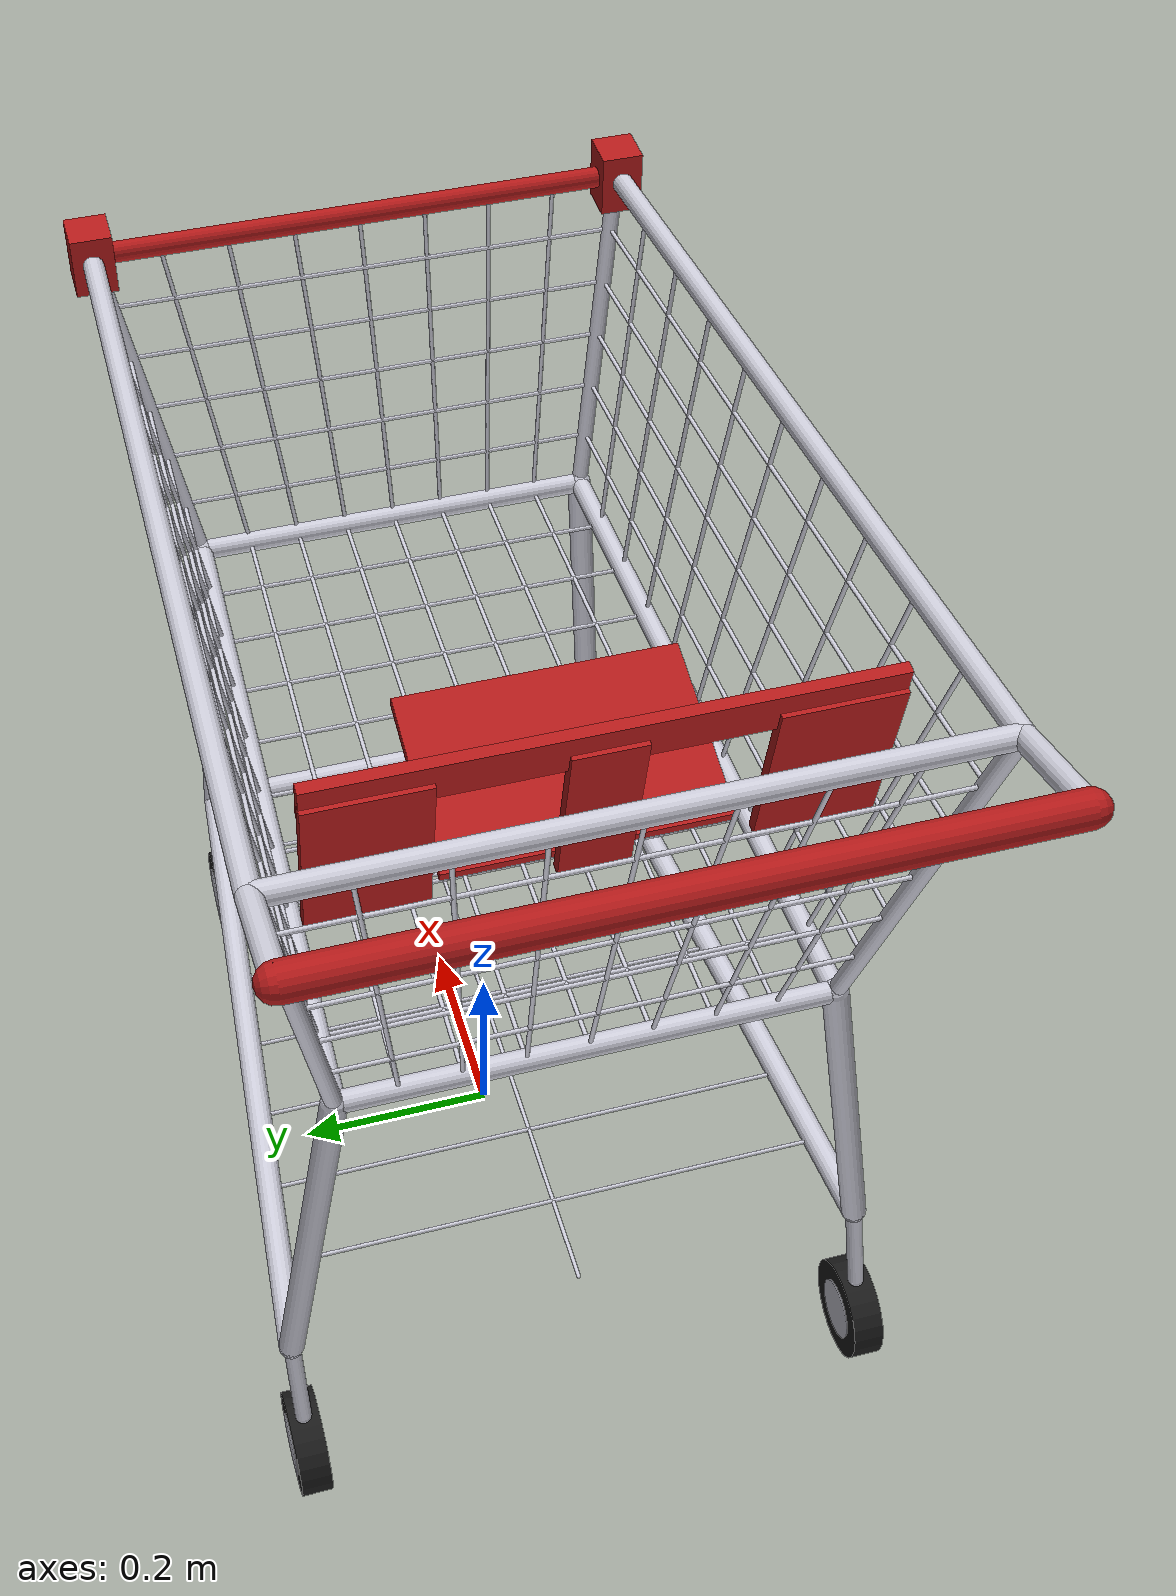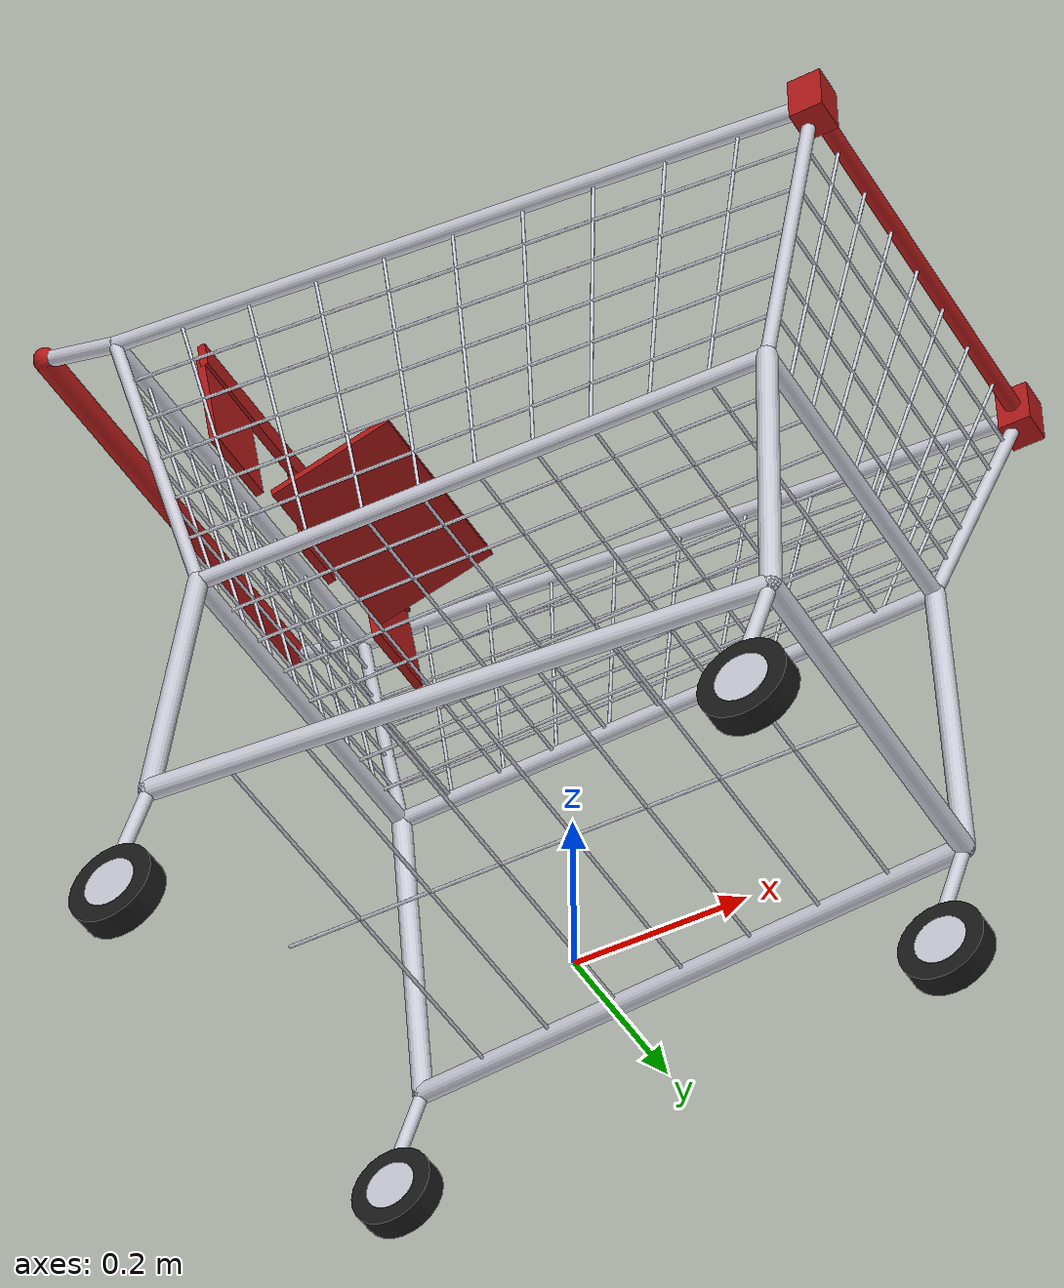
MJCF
<mujoco model="shopping_cart">
  <compiler angle="degree"/>
  <option gravity="0 0 -9.81"/>

  <asset>
    <material name="chrome" rgba="0.8 0.8 0.85 1" shininess="1.0" specular="1.0" reflectance="0.7"/>
    <material name="red_plastic" rgba="0.7 0.1 0.1 1" shininess="0.3" specular="0.5"/>
    <material name="black_rubber" rgba="0.1 0.1 0.1 1" shininess="0.1" specular="0.1"/>
  </asset>

  <worldbody>
    <body name="shopping_cart" pos="0 0 0">
      <joint name="free_joint" type="free"/>

      <!-- === BASE FRAME === -->
      <!-- Bottom Frame U-shape or Trapezoid -->
      <!-- Height of base tubes: 0.18m -->

      <!-- Left Tube -->
      <geom name="base_left" type="capsule" fromto="-0.35 0.28 0.18  0.35 0.22 0.18" size="0.012" material="chrome"/>
      <!-- Right Tube -->
      <geom name="base_right" type="capsule" fromto="-0.35 -0.28 0.18  0.35 -0.22 0.18" size="0.012" material="chrome"/>
      <!-- Front Crossbar -->
      <geom name="base_front" type="capsule" fromto="0.35 0.22 0.18  0.35 -0.22 0.18" size="0.012" material="chrome"/>

      <!-- Base Rack (Bottom Grid) -->
      <geom name="rack_trans_1" type="capsule" fromto="-0.262 0.273 0.18 -0.262 -0.273 0.18" size="0.002" material="chrome"/>
      <geom name="rack_trans_2" type="capsule" fromto="-0.175 0.265 0.18 -0.175 -0.265 0.18" size="0.002" material="chrome"/>
      <geom name="rack_trans_3" type="capsule" fromto="-0.088 0.258 0.18 -0.088 -0.258 0.18" size="0.002" material="chrome"/>
      <geom name="rack_trans_4" type="capsule" fromto="0.000 0.250 0.18 0.000 -0.250 0.18" size="0.002" material="chrome"/>
      <geom name="rack_trans_5" type="capsule" fromto="0.088 0.242 0.18 0.088 -0.242 0.18" size="0.002" material="chrome"/>
      <geom name="rack_trans_6" type="capsule" fromto="0.175 0.235 0.18 0.175 -0.235 0.18" size="0.002" material="chrome"/>
      <geom name="rack_trans_7" type="capsule" fromto="0.262 0.228 0.18 0.262 -0.228 0.18" size="0.002" material="chrome"/>
      <geom name="rack_long" type="capsule" fromto="-0.35 0 0.18 0.35 0 0.18" size="0.002" material="chrome"/>

      <!-- Vertical Supports connecting base to basket -->
      <!-- Rear Supports -->
      <geom name="support_bl" type="capsule" fromto="-0.35 0.28 0.18  -0.35 0.22 0.55" size="0.012" material="chrome"/>
      <geom name="support_br" type="capsule" fromto="-0.35 -0.28 0.18  -0.35 -0.22 0.55" size="0.012" material="chrome"/>
      <!-- Front Supports -->
      <geom name="support_fl" type="capsule" fromto="0.35 0.22 0.18  0.35 0.20 0.55" size="0.012" material="chrome"/>
      <geom name="support_fr" type="capsule" fromto="0.35 -0.22 0.18  0.35 -0.20 0.55" size="0.012" material="chrome"/>

      <!-- === WHEELS === -->
      <!-- Wheel Radius 0.05m. Center at Z=0.05m -->
      <!-- Swivel axis at Z=0.18 (attached to base frame) -->

      <!-- Front Left -->
      <body name="caster_fl" pos="0.35 0.22 0.18">
        <joint name="swivel_fl" type="hinge" axis="0 0 1" damping="0.1"/>
        <geom name="fork_fl" type="capsule" fromto="0 0 0  -0.03 0 -0.08" size="0.008" material="chrome"/>
        <body name="wheel_fl" pos="-0.03 0 -0.13">
            <joint name="roll_fl" type="hinge" axis="0 1 0" damping="0.01"/>
            <geom name="tire_fl" type="cylinder" size="0.05 0.015" material="black_rubber" euler="90 0 0"/>
            <geom name="hub_fl" type="cylinder" size="0.03 0.016" material="chrome" euler="90 0 0"/>
        </body>
      </body>

      <!-- Front Right -->
      <body name="caster_fr" pos="0.35 -0.22 0.18">
        <joint name="swivel_fr" type="hinge" axis="0 0 1" damping="0.1"/>
        <geom name="fork_fr" type="capsule" fromto="0 0 0  -0.03 0 -0.08" size="0.008" material="chrome"/>
        <body name="wheel_fr" pos="-0.03 0 -0.13">
            <joint name="roll_fr" type="hinge" axis="0 1 0" damping="0.01"/>
            <geom name="tire_fr" type="cylinder" size="0.05 0.015" material="black_rubber" euler="90 0 0"/>
            <geom name="hub_fr" type="cylinder" size="0.03 0.016" material="chrome" euler="90 0 0"/>
        </body>
      </body>

      <!-- Back Left -->
      <body name="caster_bl" pos="-0.35 0.28 0.18">
        <joint name="swivel_bl" type="hinge" axis="0 0 1" damping="0.1"/>
        <geom name="fork_bl" type="capsule" fromto="0 0 0  -0.03 0 -0.08" size="0.008" material="chrome"/>
        <body name="wheel_bl" pos="-0.03 0 -0.13">
            <joint name="roll_bl" type="hinge" axis="0 1 0" damping="0.01"/>
            <geom name="tire_bl" type="cylinder" size="0.05 0.015" material="black_rubber" euler="90 0 0"/>
            <geom name="hub_bl" type="cylinder" size="0.03 0.016" material="chrome" euler="90 0 0"/>
        </body>
      </body>

      <!-- Back Right -->
      <body name="caster_br" pos="-0.35 -0.28 0.18">
        <joint name="swivel_br" type="hinge" axis="0 0 1" damping="0.1"/>
        <geom name="fork_br" type="capsule" fromto="0 0 0  -0.03 0 -0.08" size="0.008" material="chrome"/>
        <body name="wheel_br" pos="-0.03 0 -0.13">
            <joint name="roll_br" type="hinge" axis="0 1 0" damping="0.01"/>
            <geom name="tire_br" type="cylinder" size="0.05 0.015" material="black_rubber" euler="90 0 0"/>
            <geom name="hub_br" type="cylinder" size="0.03 0.016" material="chrome" euler="90 0 0"/>
        </body>
      </body>

      <!-- === BASKET === -->
      <body name="basket" pos="0 0 0">

        <!-- Detailed Wire Mesh -->
        <geom name="mesh_side_l_1" type="capsule" fromto="-0.360 0.278 0.940 -0.280 0.218 0.550" size="0.002" material="chrome"/>
        <geom name="mesh_side_r_1" type="capsule" fromto="-0.360 -0.278 0.940 -0.280 -0.218 0.550" size="0.002" material="chrome"/>
        <geom name="mesh_side_l_2" type="capsule" fromto="-0.270 0.276 0.930 -0.210 0.216 0.550" size="0.002" material="chrome"/>
        <geom name="mesh_side_r_2" type="capsule" fromto="-0.270 -0.276 0.930 -0.210 -0.216 0.550" size="0.002" material="chrome"/>
        <geom name="mesh_side_l_3" type="capsule" fromto="-0.180 0.274 0.920 -0.140 0.214 0.550" size="0.002" material="chrome"/>
        <geom name="mesh_side_r_3" type="capsule" fromto="-0.180 -0.274 0.920 -0.140 -0.214 0.550" size="0.002" material="chrome"/>
        <geom name="mesh_side_l_4" type="capsule" fromto="-0.090 0.272 0.910 -0.070 0.212 0.550" size="0.002" material="chrome"/>
        <geom name="mesh_side_r_4" type="capsule" fromto="-0.090 -0.272 0.910 -0.070 -0.212 0.550" size="0.002" material="chrome"/>
        <geom name="mesh_side_l_5" type="capsule" fromto="0.000 0.270 0.900 0.000 0.210 0.550" size="0.002" material="chrome"/>
        <geom name="mesh_side_r_5" type="capsule" fromto="0.000 -0.270 0.900 0.000 -0.210 0.550" size="0.002" material="chrome"/>
        <geom name="mesh_side_l_6" type="capsule" fromto="0.090 0.268 0.890 0.070 0.208 0.550" size="0.002" material="chrome"/>
        <geom name="mesh_side_r_6" type="capsule" fromto="0.090 -0.268 0.890 0.070 -0.208 0.550" size="0.002" material="chrome"/>
        <geom name="mesh_side_l_7" type="capsule" fromto="0.180 0.266 0.880 0.140 0.206 0.550" size="0.002" material="chrome"/>
        <geom name="mesh_side_r_7" type="capsule" fromto="0.180 -0.266 0.880 0.140 -0.206 0.550" size="0.002" material="chrome"/>
        <geom name="mesh_side_l_8" type="capsule" fromto="0.270 0.264 0.870 0.210 0.204 0.550" size="0.002" material="chrome"/>
        <geom name="mesh_side_r_8" type="capsule" fromto="0.270 -0.264 0.870 0.210 -0.204 0.550" size="0.002" material="chrome"/>
        <geom name="mesh_side_l_9" type="capsule" fromto="0.360 0.262 0.860 0.280 0.202 0.550" size="0.002" material="chrome"/>
        <geom name="mesh_side_r_9" type="capsule" fromto="0.360 -0.262 0.860 0.280 -0.202 0.550" size="0.002" material="chrome"/>
        <geom name="mesh_front_1" type="capsule" fromto="0.450 0.195 0.850 0.350 0.150 0.550" size="0.002" material="chrome"/>
        <geom name="mesh_front_2" type="capsule" fromto="0.450 0.130 0.850 0.350 0.100 0.550" size="0.002" material="chrome"/>
        <geom name="mesh_front_3" type="capsule" fromto="0.450 0.065 0.850 0.350 0.050 0.550" size="0.002" material="chrome"/>
        <geom name="mesh_front_4" type="capsule" fromto="0.450 0.000 0.850 0.350 0.000 0.550" size="0.002" material="chrome"/>
        <geom name="mesh_front_5" type="capsule" fromto="0.450 -0.065 0.850 0.350 -0.050 0.550" size="0.002" material="chrome"/>
        <geom name="mesh_front_6" type="capsule" fromto="0.450 -0.130 0.850 0.350 -0.100 0.550" size="0.002" material="chrome"/>
        <geom name="mesh_front_7" type="capsule" fromto="0.450 -0.195 0.850 0.350 -0.150 0.550" size="0.002" material="chrome"/>
        <geom name="mesh_back_1" type="capsule" fromto="-0.450 0.210 0.950 -0.350 0.165 0.550" size="0.002" material="chrome"/>
        <geom name="mesh_back_2" type="capsule" fromto="-0.450 0.140 0.950 -0.350 0.110 0.550" size="0.002" material="chrome"/>
        <geom name="mesh_back_3" type="capsule" fromto="-0.450 0.070 0.950 -0.350 0.055 0.550" size="0.002" material="chrome"/>
        <geom name="mesh_back_4" type="capsule" fromto="-0.450 0.000 0.950 -0.350 0.000 0.550" size="0.002" material="chrome"/>
        <geom name="mesh_back_5" type="capsule" fromto="-0.450 -0.070 0.950 -0.350 -0.055 0.550" size="0.002" material="chrome"/>
        <geom name="mesh_back_6" type="capsule" fromto="-0.450 -0.140 0.950 -0.350 -0.110 0.550" size="0.002" material="chrome"/>
        <geom name="mesh_back_7" type="capsule" fromto="-0.450 -0.210 0.950 -0.350 -0.165 0.550" size="0.002" material="chrome"/>
        <geom name="mesh_h_l_1" type="capsule" fromto="-0.433 0.270 0.883 0.433 0.250 0.800" size="0.002" material="chrome"/>
        <geom name="mesh_h_r_1" type="capsule" fromto="-0.433 -0.270 0.883 0.433 -0.250 0.800" size="0.002" material="chrome"/>
        <geom name="mesh_h_f_1" type="capsule" fromto="0.433 0.250 0.800 0.433 -0.250 0.800" size="0.002" material="chrome"/>
        <geom name="mesh_h_b_1" type="capsule" fromto="-0.433 0.270 0.883 -0.433 -0.270 0.883" size="0.002" material="chrome"/>
        <geom name="mesh_h_l_2" type="capsule" fromto="-0.417 0.260 0.817 0.417 0.240 0.750" size="0.002" material="chrome"/>
        <geom name="mesh_h_r_2" type="capsule" fromto="-0.417 -0.260 0.817 0.417 -0.240 0.750" size="0.002" material="chrome"/>
        <geom name="mesh_h_f_2" type="capsule" fromto="0.417 0.240 0.750 0.417 -0.240 0.750" size="0.002" material="chrome"/>
        <geom name="mesh_h_b_2" type="capsule" fromto="-0.417 0.260 0.817 -0.417 -0.260 0.817" size="0.002" material="chrome"/>
        <geom name="mesh_h_l_3" type="capsule" fromto="-0.400 0.250 0.750 0.400 0.230 0.700" size="0.002" material="chrome"/>
        <geom name="mesh_h_r_3" type="capsule" fromto="-0.400 -0.250 0.750 0.400 -0.230 0.700" size="0.002" material="chrome"/>
        <geom name="mesh_h_f_3" type="capsule" fromto="0.400 0.230 0.700 0.400 -0.230 0.700" size="0.002" material="chrome"/>
        <geom name="mesh_h_b_3" type="capsule" fromto="-0.400 0.250 0.750 -0.400 -0.250 0.750" size="0.002" material="chrome"/>
        <geom name="mesh_h_l_4" type="capsule" fromto="-0.383 0.240 0.683 0.383 0.220 0.650" size="0.002" material="chrome"/>
        <geom name="mesh_h_r_4" type="capsule" fromto="-0.383 -0.240 0.683 0.383 -0.220 0.650" size="0.002" material="chrome"/>
        <geom name="mesh_h_f_4" type="capsule" fromto="0.383 0.220 0.650 0.383 -0.220 0.650" size="0.002" material="chrome"/>
        <geom name="mesh_h_b_4" type="capsule" fromto="-0.383 0.240 0.683 -0.383 -0.240 0.683" size="0.002" material="chrome"/>
        <geom name="mesh_h_l_5" type="capsule" fromto="-0.367 0.230 0.617 0.367 0.210 0.600" size="0.002" material="chrome"/>
        <geom name="mesh_h_r_5" type="capsule" fromto="-0.367 -0.230 0.617 0.367 -0.210 0.600" size="0.002" material="chrome"/>
        <geom name="mesh_h_f_5" type="capsule" fromto="0.367 0.210 0.600 0.367 -0.210 0.600" size="0.002" material="chrome"/>
        <geom name="mesh_h_b_5" type="capsule" fromto="-0.367 0.230 0.617 -0.367 -0.230 0.617" size="0.002" material="chrome"/>
        <geom name="floor_long_1" type="capsule" fromto="-0.350 0.165 0.550 0.350 0.150 0.550" size="0.002" material="chrome"/>
        <geom name="floor_long_2" type="capsule" fromto="-0.350 0.110 0.550 0.350 0.100 0.550" size="0.002" material="chrome"/>
        <geom name="floor_long_3" type="capsule" fromto="-0.350 0.055 0.550 0.350 0.050 0.550" size="0.002" material="chrome"/>
        <geom name="floor_long_4" type="capsule" fromto="-0.350 0.000 0.550 0.350 0.000 0.550" size="0.002" material="chrome"/>
        <geom name="floor_long_5" type="capsule" fromto="-0.350 -0.055 0.550 0.350 -0.050 0.550" size="0.002" material="chrome"/>
        <geom name="floor_long_6" type="capsule" fromto="-0.350 -0.110 0.550 0.350 -0.100 0.550" size="0.002" material="chrome"/>
        <geom name="floor_long_7" type="capsule" fromto="-0.350 -0.165 0.550 0.350 -0.150 0.550" size="0.002" material="chrome"/>
        <geom name="floor_trans_1" type="capsule" fromto="-0.280 0.218 0.550 -0.280 -0.218 0.550" size="0.002" material="chrome"/>
        <geom name="floor_trans_2" type="capsule" fromto="-0.210 0.216 0.550 -0.210 -0.216 0.550" size="0.002" material="chrome"/>
        <geom name="floor_trans_3" type="capsule" fromto="-0.140 0.214 0.550 -0.140 -0.214 0.550" size="0.002" material="chrome"/>
        <geom name="floor_trans_4" type="capsule" fromto="-0.070 0.212 0.550 -0.070 -0.212 0.550" size="0.002" material="chrome"/>
        <geom name="floor_trans_5" type="capsule" fromto="0.000 0.210 0.550 0.000 -0.210 0.550" size="0.002" material="chrome"/>
        <geom name="floor_trans_6" type="capsule" fromto="0.070 0.208 0.550 0.070 -0.208 0.550" size="0.002" material="chrome"/>
        <geom name="floor_trans_7" type="capsule" fromto="0.140 0.206 0.550 0.140 -0.206 0.550" size="0.002" material="chrome"/>
        <geom name="floor_trans_8" type="capsule" fromto="0.210 0.204 0.550 0.210 -0.204 0.550" size="0.002" material="chrome"/>
        <geom name="floor_trans_9" type="capsule" fromto="0.280 0.202 0.550 0.280 -0.202 0.550" size="0.002" material="chrome"/>

        <!-- Frame Structure -->
        <!-- Top Rim -->
        <geom name="rim_left" type="capsule" fromto="-0.45 0.28 0.95  0.45 0.26 0.85" size="0.01" material="chrome"/>
        <geom name="rim_right" type="capsule" fromto="-0.45 -0.28 0.95  0.45 -0.26 0.85" size="0.01" material="chrome"/>
        <geom name="rim_front" type="capsule" fromto="0.45 0.26 0.85  0.45 -0.26 0.85" size="0.01" material="red_plastic"/> <!-- Red corner/front -->
        <geom name="rim_back" type="capsule" fromto="-0.45 0.28 0.95  -0.45 -0.28 0.95" size="0.01" material="chrome"/>

        <!-- Bottom Rim -->
        <geom name="bottom_left" type="capsule" fromto="-0.35 0.22 0.55  0.35 0.20 0.55" size="0.01" material="chrome"/>
        <geom name="bottom_right" type="capsule" fromto="-0.35 -0.22 0.55  0.35 -0.20 0.55" size="0.01" material="chrome"/>
        <geom name="bottom_front" type="capsule" fromto="0.35 0.20 0.55  0.35 -0.20 0.55" size="0.01" material="chrome"/>
        <geom name="bottom_back" type="capsule" fromto="-0.35 0.22 0.55  -0.35 -0.22 0.55" size="0.01" material="chrome"/>

        <!-- Vertical Connectors (Corners) -->
        <geom name="vert_bl" type="capsule" fromto="-0.35 0.22 0.55  -0.45 0.28 0.95" size="0.008" material="chrome"/>
        <geom name="vert_br" type="capsule" fromto="-0.35 -0.22 0.55  -0.45 -0.28 0.95" size="0.008" material="chrome"/>
        <geom name="vert_fl" type="capsule" fromto="0.35 0.20 0.55  0.45 0.26 0.85" size="0.008" material="chrome"/>
        <geom name="vert_fr" type="capsule" fromto="0.35 -0.20 0.55  0.45 -0.26 0.85" size="0.008" material="chrome"/>

        <!-- Front Red Corners -->
        <geom name="corner_fl" type="box" size="0.02 0.02 0.03" pos="0.45 0.26 0.85" material="red_plastic"/>
        <geom name="corner_fr" type="box" size="0.02 0.02 0.03" pos="0.45 -0.26 0.85" material="red_plastic"/>

        <!-- Handle -->
        <geom name="handle_bar" type="capsule" fromto="-0.55 0.28 0.98  -0.55 -0.28 0.98" size="0.015" material="red_plastic"/>
        <geom name="handle_left_conn" type="capsule" fromto="-0.45 0.28 0.95  -0.55 0.28 0.98" size="0.01" material="chrome"/>
        <geom name="handle_right_conn" type="capsule" fromto="-0.45 -0.28 0.95  -0.55 -0.28 0.98" size="0.01" material="chrome"/>

        <!-- Child Seat -->
        <!-- Seat Flap -->
        <geom name="seat_flap" type="box" size="0.08 0.12 0.005" pos="-0.25 0 0.8" euler="0 -15 0" material="red_plastic"/>
        <!-- Back Rest (with simulated leg holes) -->
        <!-- Center Pillar -->
        <geom name="seat_back_center" type="box" size="0.005 0.03 0.08" pos="-0.35 0 0.85" euler="0 -10 0" material="red_plastic"/>
        <!-- Left Side -->
        <geom name="seat_back_left" type="box" size="0.005 0.05 0.08" pos="-0.35 0.18 0.85" euler="0 -10 0" material="red_plastic"/>
        <!-- Right Side -->
        <geom name="seat_back_right" type="box" size="0.005 0.05 0.08" pos="-0.35 -0.18 0.85" euler="0 -10 0" material="red_plastic"/>
        <!-- Top Bar -->
        <geom name="seat_back_top" type="box" size="0.005 0.23 0.02" pos="-0.36 0 0.93" euler="0 -10 0" material="red_plastic"/>

      </body>

    </body>
  </worldbody>
</mujoco>
